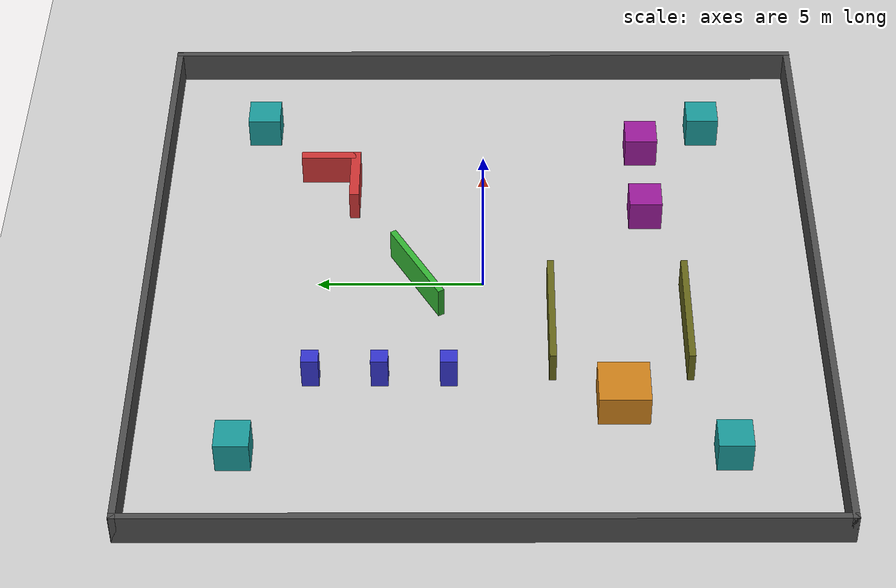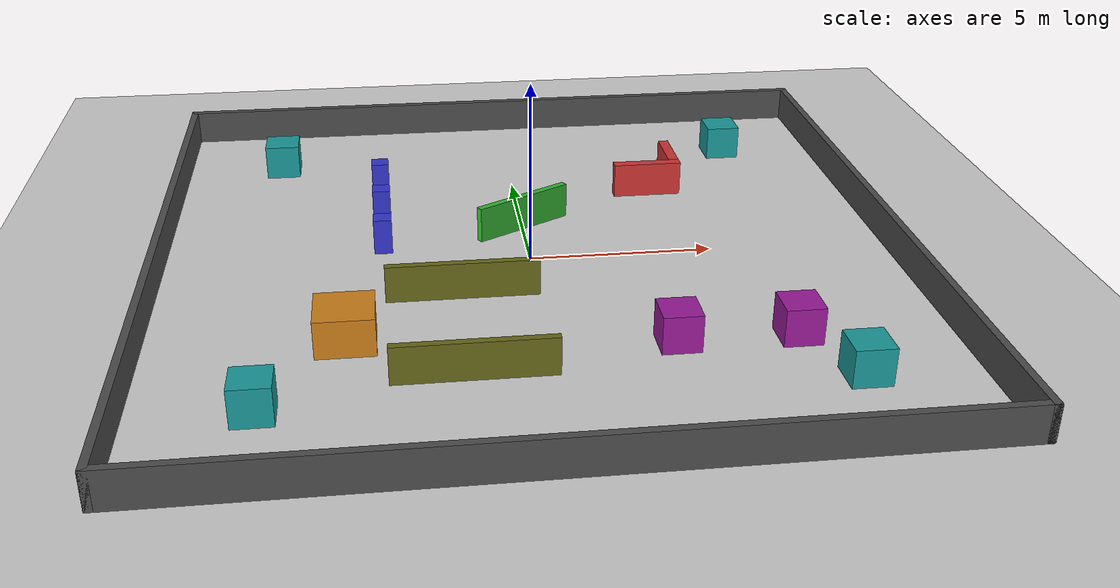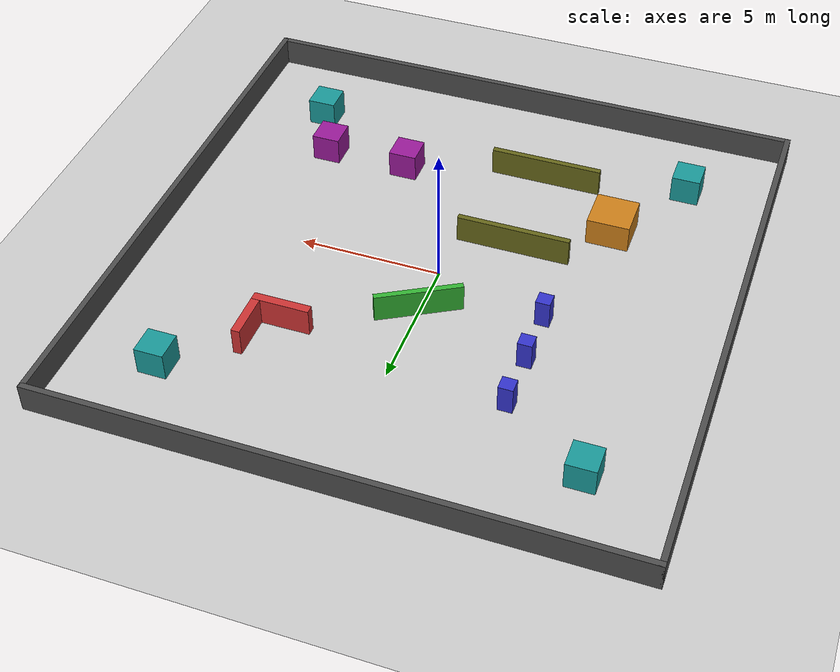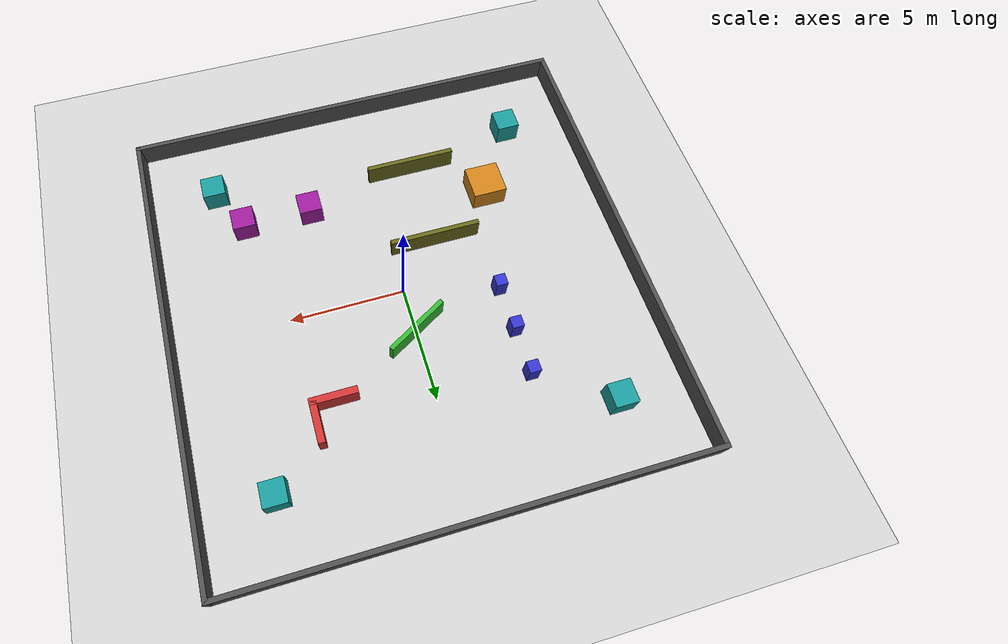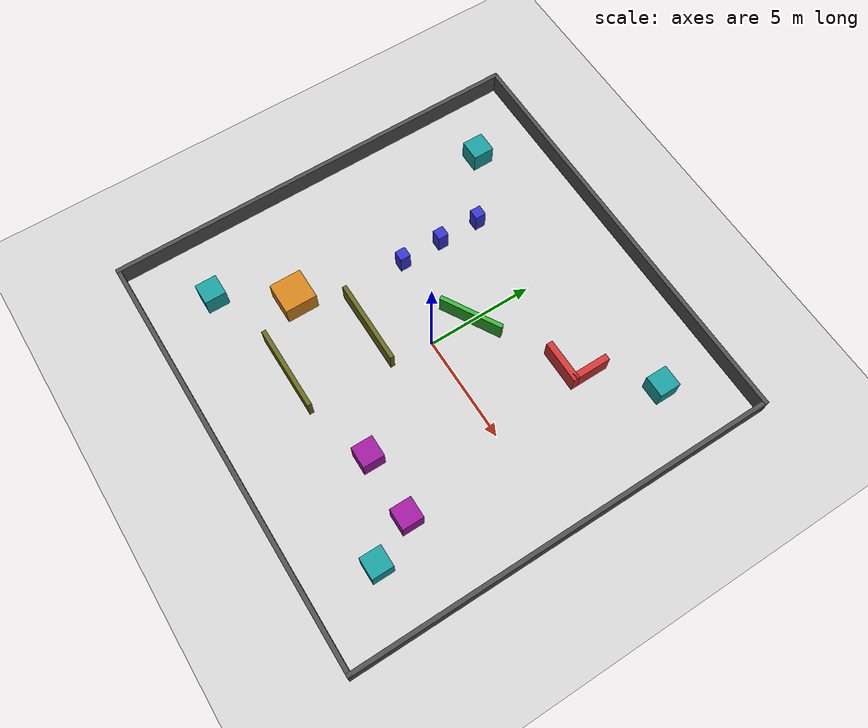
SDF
<?xml version="1.0" ?>
<sdf version="1.7">
  <world name="amr_world">

    <physics name="1ms" type="ignored">
      <max_step_size>0.001</max_step_size>
      <real_time_factor>1.0</real_time_factor>
    </physics>
    <plugin filename="libignition-gazebo-physics-system.so"
            name="ignition::gazebo::systems::Physics"/>
    <plugin filename="libignition-gazebo-user-commands-system.so"
            name="ignition::gazebo::systems::UserCommands"/>
    <plugin filename="libignition-gazebo-scene-broadcaster-system.so"
            name="ignition::gazebo::systems::SceneBroadcaster"/>

    <gui fullscreen='false'>
      <plugin name='3D View' filename='GzScene3D'>
        <ignition-gui>
          <title>3D View</title>
          <property type='bool' key='showTitleBar'>false</property>
          <property type='string' key='state'>docked</property>
        </ignition-gui>
        <engine>ogre</engine>
        <scene>scene</scene>
        <ambient_light>0.4 0.4 0.4</ambient_light>
        <background_color>0.8 0.8 0.8</background_color>
        <camera_pose>0 -15 10 0 0.6 1.57</camera_pose>
      </plugin>
      <plugin name='World control' filename='WorldControl'>
        <ignition-gui>
          <title>World control</title>
          <property type='bool' key='showTitleBar'>false</property>
          <property type='bool' key='resizable'>false</property>
          <property type='double' key='height'>72</property>
          <property type='double' key='width'>121</property>
          <property type='double' key='z'>1</property>
          <property type='string' key='state'>floating</property>
          <anchors target='3D View'>
            <line own='left' target='left'/>
            <line own='bottom' target='bottom'/>
          </anchors>
        </ignition-gui>
        <play_pause>true</play_pause>
        <step>true</step>
        <start_paused>true</start_paused>
      </plugin>
      <plugin name='World stats' filename='WorldStats'>
        <ignition-gui>
          <title>World stats</title>
          <property type='bool' key='showTitleBar'>false</property>
          <property type='bool' key='resizable'>false</property>
          <property type='double' key='height'>110</property>
          <property type='double' key='width'>290</property>
          <property type='double' key='z'>1</property>
          <property type='string' key='state'>floating</property>
          <anchors target='3D View'>
            <line own='right' target='right'/>
            <line own='bottom' target='bottom'/>
          </anchors>
        </ignition-gui>
        <sim_time>true</sim_time>
        <real_time>true</real_time>
        <real_time_factor>true</real_time_factor>
        <iterations>true</iterations>
      </plugin>
      <plugin name='Transform control' filename='TransformControl'>
        <ignition-gui>
          <property type='bool' key='showTitleBar'>false</property>
          <property key='x' type='double'>0</property>
          <property key='y' type='double'>0</property>
          <property key='width' type='double'>250</property>
          <property key='height' type='double'>50</property>
          <property key='state' type='string'>floating</property>
          <property key='cardBackground' type='string'>#666666</property>
        </ignition-gui>
      </plugin>
      <plugin name='Shapes' filename='Shapes'>
        <ignition-gui>
          <property type='bool' key='showTitleBar'>false</property>
          <property key='x' type='double'>250</property>
          <property key='y' type='double'>0</property>
          <property key='width' type='double'>150</property>
          <property key='height' type='double'>50</property>
          <property key='state' type='string'>floating</property>
          <property key='cardBackground' type='string'>#666666</property>
        </ignition-gui>
      </plugin>
      <plugin name='Screenshot' filename='Screenshot'>
        <ignition-gui>
          <property type='bool' key='showTitleBar'>false</property>
          <property key='x' type='double'>400</property>
          <property key='y' type='double'>0</property>
          <property key='width' type='double'>50</property>
          <property key='height' type='double'>50</property>
          <property key='state' type='string'>floating</property>
          <property key='cardBackground' type='string'>#666666</property>
        </ignition-gui>
      </plugin>
      <plugin name='Component inspector' filename='ComponentInspector'>
        <ignition-gui>
          <property key='x' type='double'>0</property>
          <property key='y' type='double'>0</property>
          <property key='width' type='double'>400</property>
          <property key='height' type='double'>375</property>
          <property key='state' type='string'>docked_collapsed</property>
        </ignition-gui>
      </plugin>
      <plugin name='Entity tree' filename='EntityTree'>
        <ignition-gui>
          <property key='x' type='double'>0</property>
          <property key='y' type='double'>0</property>
          <property key='width' type='double'>400</property>
          <property key='height' type='double'>375</property>
          <property key='state' type='string'>docked_collapsed</property>
        </ignition-gui>
      </plugin>

    </gui>

    <light type="directional" name="sun">
      <cast_shadows>true</cast_shadows>
      <pose>0 0 10 0 0 0</pose>
      <diffuse>1 1 1 1</diffuse>
      <specular>0.5 0.5 0.5 1</specular>
      <direction>-0.5 0.1 -0.9</direction>
    </light>

    <!-- ==================== GROUND ==================== -->
    <model name="ground_plane">
      <static>true</static>
      <link name="link">
        <collision name="collision">
          <geometry>
            <plane>
              <normal>0 0 1</normal>
              <size>100 100</size>
            </plane>
          </geometry>
        </collision>
        <visual name="visual">
          <geometry>
            <plane>
              <normal>0 0 1</normal>
              <size>100 100</size>
            </plane>
          </geometry>
          <material>
            <ambient>0.8 0.8 0.8 1</ambient>
            <diffuse>0.8 0.8 0.8 1</diffuse>
          </material>
        </visual>
      </link>
    </model>

    <!-- ==================== BOUNDARY WALLS (20x20m arena) ==================== -->
    <!-- North wall -->
    <model name="wall_north">
      <static>true</static>
      <pose>0 10 0.5 0 0 0</pose>
      <link name="link">
        <collision name="collision">
          <geometry><box><size>20.2 0.2 1</size></box></geometry>
        </collision>
        <visual name="visual">
          <geometry><box><size>20.2 0.2 1</size></box></geometry>
          <material><ambient>0.3 0.3 0.3 1</ambient><diffuse>0.3 0.3 0.3 1</diffuse></material>
        </visual>
      </link>
    </model>

    <!-- South wall -->
    <model name="wall_south">
      <static>true</static>
      <pose>0 -10 0.5 0 0 0</pose>
      <link name="link">
        <collision name="collision">
          <geometry><box><size>20.2 0.2 1</size></box></geometry>
        </collision>
        <visual name="visual">
          <geometry><box><size>20.2 0.2 1</size></box></geometry>
          <material><ambient>0.3 0.3 0.3 1</ambient><diffuse>0.3 0.3 0.3 1</diffuse></material>
        </visual>
      </link>
    </model>

    <!-- East wall -->
    <model name="wall_east">
      <static>true</static>
      <pose>10 0 0.5 0 0 0</pose>
      <link name="link">
        <collision name="collision">
          <geometry><box><size>0.2 20.2 1</size></box></geometry>
        </collision>
        <visual name="visual">
          <geometry><box><size>0.2 20.2 1</size></box></geometry>
          <material><ambient>0.3 0.3 0.3 1</ambient><diffuse>0.3 0.3 0.3 1</diffuse></material>
        </visual>
      </link>
    </model>

    <!-- West wall -->
    <model name="wall_west">
      <static>true</static>
      <pose>-10 0 0.5 0 0 0</pose>
      <link name="link">
        <collision name="collision">
          <geometry><box><size>0.2 20.2 1</size></box></geometry>
        </collision>
        <visual name="visual">
          <geometry><box><size>0.2 20.2 1</size></box></geometry>
          <material><ambient>0.3 0.3 0.3 1</ambient><diffuse>0.3 0.3 0.3 1</diffuse></material>
        </visual>
      </link>
    </model>

    <!-- ==================== INNER OBSTACLES ==================== -->

    <!-- L-shaped obstacle (two boxes forming an L) -->
    <model name="obstacle_L1">
      <static>true</static>
      <pose>4 4 0.5 0 0 0</pose>
      <link name="link">
        <collision name="collision">
          <geometry><box><size>2 0.3 1</size></box></geometry>
        </collision>
        <visual name="visual">
          <geometry><box><size>2 0.3 1</size></box></geometry>
          <material><ambient>0.8 0.2 0.2 1</ambient><diffuse>0.8 0.2 0.2 1</diffuse></material>
        </visual>
      </link>
    </model>

    <model name="obstacle_L2">
      <static>true</static>
      <pose>4.85 4.85 0.5 0 0 0</pose>
      <link name="link">
        <collision name="collision">
          <geometry><box><size>0.3 1.7 1</size></box></geometry>
        </collision>
        <visual name="visual">
          <geometry><box><size>0.3 1.7 1</size></box></geometry>
          <material><ambient>0.8 0.2 0.2 1</ambient><diffuse>0.8 0.2 0.2 1</diffuse></material>
        </visual>
      </link>
    </model>

    <!-- Single column obstacle -->
    <model name="obstacle_col1">
      <static>true</static>
      <pose>-4 5 0.5 0 0 0</pose>
      <link name="link">
        <collision name="collision">
          <geometry><box><size>0.5 0.5 1</size></box></geometry>
        </collision>
        <visual name="visual">
          <geometry><box><size>0.5 0.5 1</size></box></geometry>
          <material><ambient>0.2 0.2 0.8 1</ambient><diffuse>0.2 0.2 0.8 1</diffuse></material>
        </visual>
      </link>
    </model>

    <model name="obstacle_col2">
      <static>true</static>
      <pose>-4 3 0.5 0 0 0</pose>
      <link name="link">
        <collision name="collision">
          <geometry><box><size>0.5 0.5 1</size></box></geometry>
        </collision>
        <visual name="visual">
          <geometry><box><size>0.5 0.5 1</size></box></geometry>
          <material><ambient>0.2 0.2 0.8 1</ambient><diffuse>0.2 0.2 0.8 1</diffuse></material>
        </visual>
      </link>
    </model>

    <model name="obstacle_col3">
      <static>true</static>
      <pose>-4 1 0.5 0 0 0</pose>
      <link name="link">
        <collision name="collision">
          <geometry><box><size>0.5 0.5 1</size></box></geometry>
        </collision>
        <visual name="visual">
          <geometry><box><size>0.5 0.5 1</size></box></geometry>
          <material><ambient>0.2 0.2 0.8 1</ambient><diffuse>0.2 0.2 0.8 1</diffuse></material>
        </visual>
      </link>
    </model>

    <!-- Long diagonal-ish wall segment -->
    <model name="obstacle_wall1">
      <static>true</static>
      <pose>0 2 0.5 0 0 0.52</pose>
      <link name="link">
        <collision name="collision">
          <geometry><box><size>3 0.2 1</size></box></geometry>
        </collision>
        <visual name="visual">
          <geometry><box><size>3 0.2 1</size></box></geometry>
          <material><ambient>0.2 0.7 0.2 1</ambient><diffuse>0.2 0.7 0.2 1</diffuse></material>
        </visual>
      </link>
    </model>

    <!-- Bottom section obstacles -->
    <model name="obstacle_box1">
      <static>true</static>
      <pose>-5 -4 0.5 0 0 0</pose>
      <link name="link">
        <collision name="collision">
          <geometry><box><size>1.5 1.5 1</size></box></geometry>
        </collision>
        <visual name="visual">
          <geometry><box><size>1.5 1.5 1</size></box></geometry>
          <material><ambient>0.8 0.5 0.1 1</ambient><diffuse>0.8 0.5 0.1 1</diffuse></material>
        </visual>
      </link>
    </model>

    <model name="obstacle_box2">
      <static>true</static>
      <pose>3 -5 0.5 0 0 0</pose>
      <link name="link">
        <collision name="collision">
          <geometry><box><size>1 1 1</size></box></geometry>
        </collision>
        <visual name="visual">
          <geometry><box><size>1 1 1</size></box></geometry>
          <material><ambient>0.6 0.1 0.6 1</ambient><diffuse>0.6 0.1 0.6 1</diffuse></material>
        </visual>
      </link>
    </model>

    <model name="obstacle_box3">
      <static>true</static>
      <pose>6 -5 0.5 0 0 0</pose>
      <link name="link">
        <collision name="collision">
          <geometry><box><size>1 1 1</size></box></geometry>
        </collision>
        <visual name="visual">
          <geometry><box><size>1 1 1</size></box></geometry>
          <material><ambient>0.6 0.1 0.6 1</ambient><diffuse>0.6 0.1 0.6 1</diffuse></material>
        </visual>
      </link>
    </model>

    <!-- Corridor-forming walls -->
    <model name="corridor_wall1">
      <static>true</static>
      <pose>-2 -2 0.5 0 0 0</pose>
      <link name="link">
        <collision name="collision">
          <geometry><box><size>4 0.2 1</size></box></geometry>
        </collision>
        <visual name="visual">
          <geometry><box><size>4 0.2 1</size></box></geometry>
          <material><ambient>0.4 0.4 0.1 1</ambient><diffuse>0.4 0.4 0.1 1</diffuse></material>
        </visual>
      </link>
    </model>

    <model name="corridor_wall2">
      <static>true</static>
      <pose>-2 -6 0.5 0 0 0</pose>
      <link name="link">
        <collision name="collision">
          <geometry><box><size>4 0.2 1</size></box></geometry>
        </collision>
        <visual name="visual">
          <geometry><box><size>4 0.2 1</size></box></geometry>
          <material><ambient>0.4 0.4 0.1 1</ambient><diffuse>0.4 0.4 0.1 1</diffuse></material>
        </visual>
      </link>
    </model>

    <!-- Far corner obstacles -->
    <model name="obstacle_corner1">
      <static>true</static>
      <pose>7 7 0.5 0 0 0</pose>
      <link name="link">
        <collision name="collision">
          <geometry><box><size>1 1 1</size></box></geometry>
        </collision>
        <visual name="visual">
          <geometry><box><size>1 1 1</size></box></geometry>
          <material><ambient>0.1 0.6 0.6 1</ambient><diffuse>0.1 0.6 0.6 1</diffuse></material>
        </visual>
      </link>
    </model>

    <model name="obstacle_corner2">
      <static>true</static>
      <pose>-7 -7 0.5 0 0 0</pose>
      <link name="link">
        <collision name="collision">
          <geometry><box><size>1 1 1</size></box></geometry>
        </collision>
        <visual name="visual">
          <geometry><box><size>1 1 1</size></box></geometry>
          <material><ambient>0.1 0.6 0.6 1</ambient><diffuse>0.1 0.6 0.6 1</diffuse></material>
        </visual>
      </link>
    </model>

    <model name="obstacle_corner3">
      <static>true</static>
      <pose>7 -7 0.5 0 0 0</pose>
      <link name="link">
        <collision name="collision">
          <geometry><box><size>1 1 1</size></box></geometry>
        </collision>
        <visual name="visual">
          <geometry><box><size>1 1 1</size></box></geometry>
          <material><ambient>0.1 0.6 0.6 1</ambient><diffuse>0.1 0.6 0.6 1</diffuse></material>
        </visual>
      </link>
    </model>

    <model name="obstacle_corner4">
      <static>true</static>
      <pose>-7 7 0.5 0 0 0</pose>
      <link name="link">
        <collision name="collision">
          <geometry><box><size>1 1 1</size></box></geometry>
        </collision>
        <visual name="visual">
          <geometry><box><size>1 1 1</size></box></geometry>
          <material><ambient>0.1 0.6 0.6 1</ambient><diffuse>0.1 0.6 0.6 1</diffuse></material>
        </visual>
      </link>
    </model>

  </world>
</sdf>
